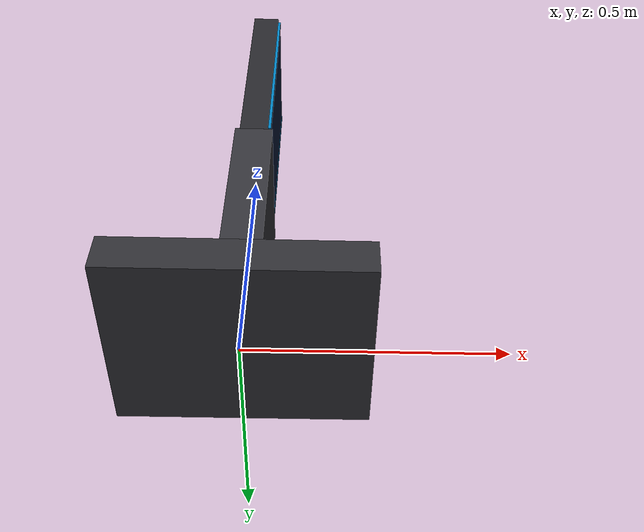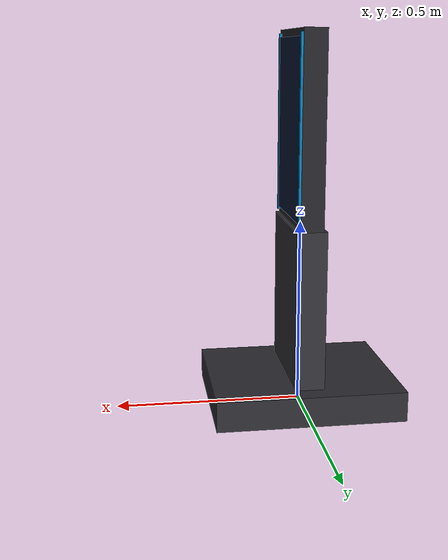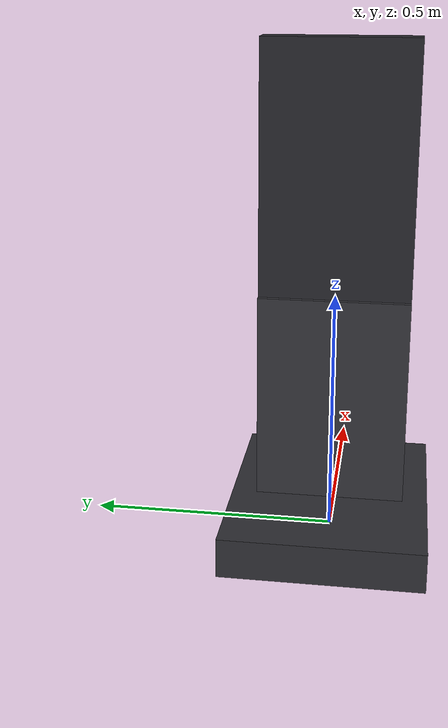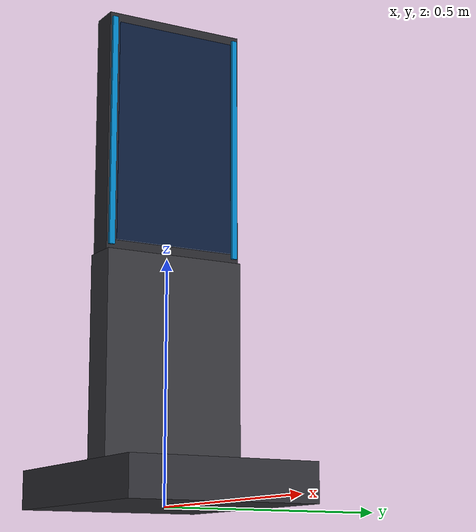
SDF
<?xml version="1.0" encoding="utf-8"?>
<sdf version="1.7">
  <model name="kiosk">
    <static>true</static>

    <!-- 1) 베이스 슬랩 -->
    <link name="base">
      <pose>0 0 0.040 0 0 0</pose>
      <visual name="base_visual">
        <geometry>
          <box><size>0.500 0.400 0.080</size></box>
        </geometry>
        <material>
          <ambient>0.10 0.10 0.12 1</ambient>
          <diffuse>0.18 0.18 0.20 1</diffuse>
          <specular>0.25 0.25 0.25 1</specular>
        </material>
      </visual>
      <collision name="base_collision">
        <geometry>
          <box><size>0.500 0.400 0.080</size></box>
        </geometry>
      </collision>
    </link>

    <!-- 2) 수직 컬럼 -->
    <link name="column">
      <pose>0 0 0.290 0 0 0</pose>
      <visual name="column_visual">
        <geometry>
          <box><size>0.080 0.300 0.420</size></box>
        </geometry>
        <material>
          <ambient>0.12 0.12 0.14 1</ambient>
          <diffuse>0.20 0.20 0.22 1</diffuse>
          <specular>0.30 0.30 0.30 1</specular>
        </material>
      </visual>
      <collision name="column_collision">
        <geometry>
          <box><size>0.080 0.300 0.420</size></box>
        </geometry>
      </collision>
    </link>

    <!-- 3) 상단 하우징 — portrait 디스플레이 외곽 (top z=1.0) -->
    <link name="housing">
      <pose>0 0 0.750 0 0 0</pose>
      <visual name="housing_visual">
        <geometry>
          <box><size>0.060 0.300 0.500</size></box>
        </geometry>
        <material>
          <ambient>0.08 0.08 0.10 1</ambient>
          <diffuse>0.15 0.15 0.17 1</diffuse>
          <specular>0.20 0.20 0.20 1</specular>
        </material>
      </visual>
      <collision name="housing_collision">
        <geometry>
          <box><size>0.060 0.300 0.500</size></box>
        </geometry>
      </collision>
    </link>

    <!-- 4) 디스플레이면 — 세로형 단색 다크 네이비 -->
    <link name="screen">
      <pose>0.033 0 0.750 0 0 0</pose>
      <visual name="screen_visual">
        <geometry>
          <box><size>0.005 0.260 0.460</size></box>
        </geometry>
        <material>
          <ambient>0.02 0.04 0.10 1</ambient>
          <diffuse>0.04 0.10 0.22 1</diffuse>
          <specular>0.40 0.40 0.50 1</specular>
          <emissive>0.05 0.15 0.30 1</emissive>
        </material>
      </visual>
    </link>

    <!-- 5) 화면 베젤 — 좌우 시안 글로우 스트립 (portrait 높이 0.46 매칭) -->
    <link name="bezel_left">
      <pose>0.033 0.140 0.750 0 0 0</pose>
      <visual name="bezel_l_visual">
        <geometry>
          <box><size>0.006 0.012 0.480</size></box>
        </geometry>
        <material>
          <ambient>0.00 0.30 0.45 1</ambient>
          <diffuse>0.00 0.50 0.75 1</diffuse>
          <specular>0.20 0.40 0.50 1</specular>
          <emissive>0.00 0.80 1.00 1</emissive>
        </material>
      </visual>
    </link>
    <link name="bezel_right">
      <pose>0.033 -0.140 0.750 0 0 0</pose>
      <visual name="bezel_r_visual">
        <geometry>
          <box><size>0.006 0.012 0.480</size></box>
        </geometry>
        <material>
          <ambient>0.00 0.30 0.45 1</ambient>
          <diffuse>0.00 0.50 0.75 1</diffuse>
          <specular>0.20 0.40 0.50 1</specular>
          <emissive>0.00 0.80 1.00 1</emissive>
        </material>
      </visual>
    </link>
  </model>
</sdf>
